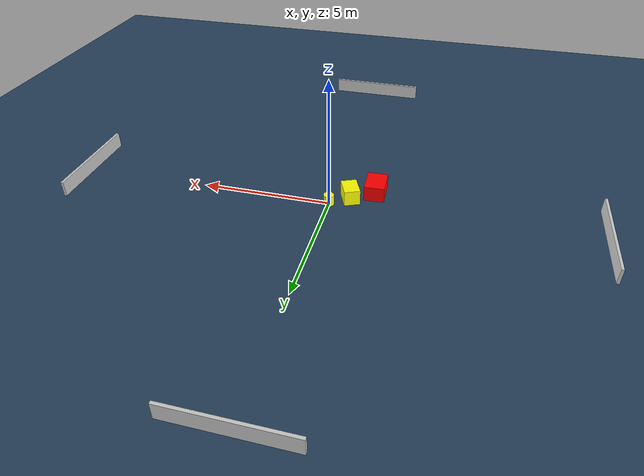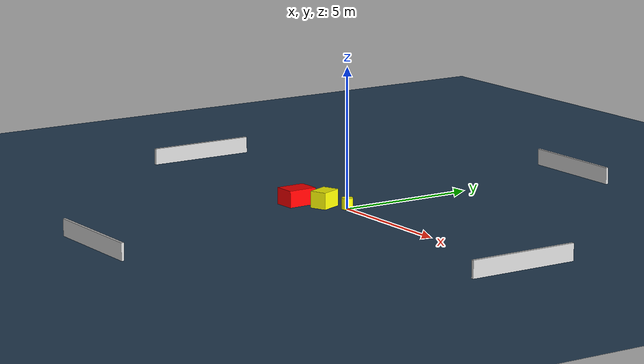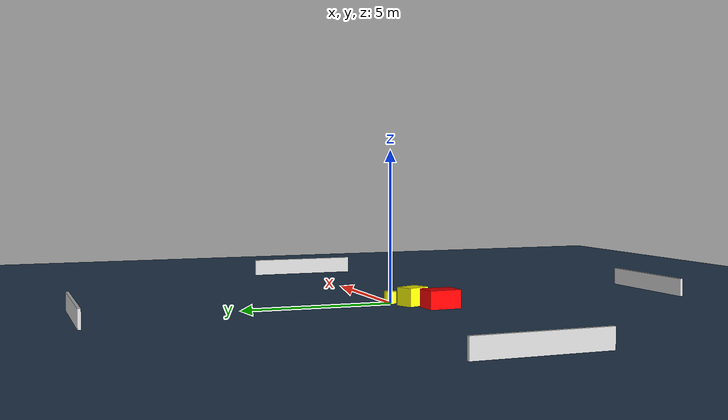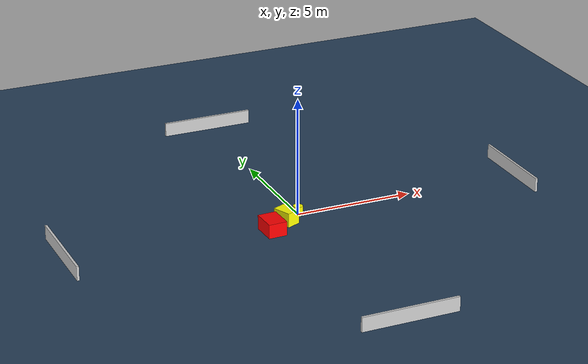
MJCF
<?xml version="1.0" ?>
<mujoco model="generated_environment">
  <option timestep="0.01" integrator="RK4" cone="elliptic"/>
  <default>
    <geom density="1"/>
  </default>
  <asset>
    <texture builtin="gradient" height="3072" name="skybox" rgb1="0.3 0.5 0.7" rgb2="0 0 0" type="skybox" width="512"/>
    <texture builtin="checker" height="300" name="groundplane" rgb1="0.2 0.3 0.4" rgb2="0.1 0.2 0.3" type="2d" width="300"/>
    <material name="groundplane" reflectance="0.2" texrepeat="5 5" texture="groundplane"/>
  </asset>
  <worldbody>
    <light dir="0 0 -1" directional="true" pos="0 0 1.5"/>
    <geom condim="3" friction="0.5 0.005 0.001" material="groundplane" name="floor" pos="0 0 0" size="0 0 0.05" type="plane"/>
    <body name="walls">
      <geom name="wall_1" condim="4" pos="-10.0 0.0 0.3" rgba="0.800000011920929 0.800000011920929 0.800000011920929 1.0" size="0.05 2.0 0.3" type="box"/>
      <geom name="wall_2" condim="4" pos="10.0 0.0 0.3" rgba="0.800000011920929 0.800000011920929 0.800000011920929 1.0" size="0.05 2.0 0.3" type="box"/>
      <geom name="wall_3" condim="4" pos="0.0 -10.0 0.3" rgba="0.800000011920929 0.800000011920929 0.800000011920929 1.0" size="2.0 0.05 0.3" type="box"/>
      <geom name="wall_4" condim="4" pos="0.0 10.0 0.3" rgba="0.800000011920929 0.800000011920929 0.800000011920929 1.0" size="2.0 0.05 0.3" type="box"/>
    </body>
    <body name="robot">
      <joint name="joint_x" type="slide" pos="0 0 0" axis="1 0 0"/>
      <joint name="joint_y" type="slide" pos="0 0 0" axis="0 1 0"/>
      <geom name="robot" type="cylinder" pos="0.0 0.0 0.2" size="0.2 0.2 0.0" mass="5.0" friction="1.0 0.005 0.0001" condim="4" rgba="1.0 1.0 0.0 1.0"/>
    </body>
    <body name="obstacle_1_movable">
      <geom name="obstacle_1_movable" condim="4" pos="-0.7206418467255636 -0.48733997851188193 0.3" euler="0 0 23.084314584421502" friction="0.0 0.005 0.001" rgba="1.0 1.0 0.0 1.0" size="0.30362414159597584 0.4054401147067447 0.3" type="box" mass="0.1"/>
      <joint type="free"/>
    </body>
    <body name="obstacle_2_static">
      <geom name="obstacle_2_static" condim="4" pos="-1.5985522861708696 -1.0799166543124636 0.3" euler="0 0 91.93873889626784" friction="0.0 0.005 0.001" rgba="1.0 0.0 0.0 1.0" size="0.5323480173453949 0.39098357718927584 0.3" type="box"/>
    </body>
  </worldbody>
  <actuator>
    <motor name="actuator_x" joint="joint_x" gear="1" ctrlrange="-1 1"/>
    <motor name="actuator_y" joint="joint_y" gear="1" ctrlrange="-1 1"/>
  </actuator>
</mujoco>
